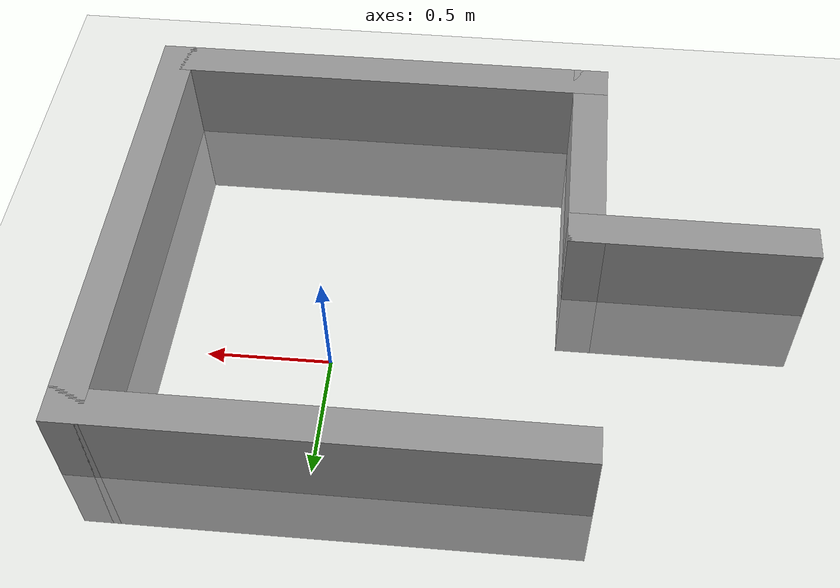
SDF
<?xml version="1.0" ?>
<sdf version='1.8'>
  <world name='empty'>
    <physics name="1ms" type="ignored">
      <max_step_size>0.001</max_step_size>
      <real_time_factor>1.0</real_time_factor>
    </physics>

    <plugin
      filename="gz-sim-physics-system"
      name="gz::sim::systems::Physics">
    </plugin>
    <plugin
      filename="gz-sim-user-commands-system"
      name="gz::sim::systems::UserCommands">
    </plugin>
    <plugin
      filename="gz-sim-scene-broadcaster-system"
      name="gz::sim::systems::SceneBroadcaster">
    </plugin>
    <plugin
      filename="gz-sim-contact-system"
      name="gz::sim::systems::Contact">
    </plugin>
    <plugin
      filename="gz-sim-sensors-system"
      name="gz::sim::systems::Sensors">
      <render_engine>ogre2</render_engine>
    </plugin>
    <plugin
      filename="gz-sim-imu-system"
      name="gz::sim::systems::Imu">
    </plugin>

    <gui fullscreen="0">
      <!-- 3D scene -->
      <plugin filename="MinimalScene" name="3D View">
        <gz-gui>
          <title>3D View</title>
          <property type="bool" key="showTitleBar">false</property>
          <property type="string" key="state">docked</property>
        </gz-gui>

        <engine>ogre2</engine>
        <scene>scene</scene>
        <ambient_light>0.4 0.4 0.4</ambient_light>
        <background_color>0.8 0.8 0.8</background_color>
        <camera_pose>-6 0 6 0 0.5 0</camera_pose>
        <camera_clip>
          <near>0.25</near>
          <far>25000</far>
        </camera_clip>
      </plugin>
      <!-- Plugins that add functionality to the scene -->
      <plugin filename="EntityContextMenuPlugin" name="Entity context menu">
        <gz-gui>
          <property key="state" type="string">floating</property>
          <property key="width" type="double">5</property>
          <property key="height" type="double">5</property>
          <property key="showTitleBar" type="bool">false</property>
        </gz-gui>
      </plugin>
      <plugin filename="GzSceneManager" name="Scene Manager">
        <gz-gui>
          <property key="resizable" type="bool">false</property>
          <property key="width" type="double">5</property>
          <property key="height" type="double">5</property>
          <property key="state" type="string">floating</property>
          <property key="showTitleBar" type="bool">false</property>
        </gz-gui>
      </plugin>
      <plugin filename="InteractiveViewControl" name="Interactive view control">
        <gz-gui>
          <property key="resizable" type="bool">false</property>
          <property key="width" type="double">5</property>
          <property key="height" type="double">5</property>
          <property key="state" type="string">floating</property>
          <property key="showTitleBar" type="bool">false</property>
        </gz-gui>
      </plugin>
      <plugin filename="CameraTracking" name="Camera Tracking">
        <gz-gui>
          <property key="resizable" type="bool">false</property>
          <property key="width" type="double">5</property>
          <property key="height" type="double">5</property>
          <property key="state" type="string">floating</property>
          <property key="showTitleBar" type="bool">false</property>
        </gz-gui>
      </plugin>
      <plugin filename="MarkerManager" name="Marker manager">
        <gz-gui>
          <property key="resizable" type="bool">false</property>
          <property key="width" type="double">5</property>
          <property key="height" type="double">5</property>
          <property key="state" type="string">floating</property>
          <property key="showTitleBar" type="bool">false</property>
        </gz-gui>
      </plugin>
      <plugin filename="SelectEntities" name="Select Entities">
        <gz-gui>
          <anchors target="Select entities">
            <line own="right" target="right"/>
            <line own="top" target="top"/>
          </anchors>
          <property key="resizable" type="bool">false</property>
          <property key="width" type="double">5</property>
          <property key="height" type="double">5</property>
          <property key="state" type="string">floating</property>
          <property key="showTitleBar" type="bool">false</property>
        </gz-gui>
      </plugin>
      <plugin filename="VisualizationCapabilities" name="Visualization Capabilities">
        <gz-gui>
          <property key="resizable" type="bool">false</property>
          <property key="width" type="double">5</property>
          <property key="height" type="double">5</property>
          <property key="state" type="string">floating</property>
          <property key="showTitleBar" type="bool">false</property>
        </gz-gui>
      </plugin>
      <plugin filename="Spawn" name="Spawn Entities">
        <gz-gui>
          <anchors target="Select entities">
            <line own="right" target="right"/>
            <line own="top" target="top"/>
          </anchors>
          <property key="resizable" type="bool">false</property>
          <property key="width" type="double">5</property>
          <property key="height" type="double">5</property>
          <property key="state" type="string">floating</property>
          <property key="showTitleBar" type="bool">false</property>
        </gz-gui>
      </plugin>

      <!-- World control -->
      <plugin filename="WorldControl" name="World control">
        <gz-gui>
          <title>World control</title>
          <property type="bool" key="showTitleBar">false</property>
          <property type="bool" key="resizable">false</property>
          <property type="double" key="height">72</property>
          <property type="double" key="width">121</property>
          <property type="double" key="z">1</property>

          <property type="string" key="state">floating</property>
          <anchors target="3D View">
            <line own="left" target="left"/>
            <line own="bottom" target="bottom"/>
          </anchors>
        </gz-gui>

        <play_pause>true</play_pause>
        <step>true</step>
        <start_paused>true</start_paused>
        <use_event>true</use_event>

      </plugin>

      <!-- World statistics -->
      <plugin filename="WorldStats" name="World stats">
        <gz-gui>
          <title>World stats</title>
          <property type="bool" key="showTitleBar">false</property>
          <property type="bool" key="resizable">false</property>
          <property type="double" key="height">110</property>
          <property type="double" key="width">290</property>
          <property type="double" key="z">1</property>

          <property type="string" key="state">floating</property>
          <anchors target="3D View">
            <line own="right" target="right"/>
            <line own="bottom" target="bottom"/>
          </anchors>
        </gz-gui>

        <sim_time>true</sim_time>
        <real_time>true</real_time>
        <real_time_factor>true</real_time_factor>
        <iterations>true</iterations>
      </plugin>

      <!-- Insert simple shapes -->
      <plugin filename="Shapes" name="Shapes">
        <gz-gui>
          <property key="resizable" type="bool">false</property>
          <property key="x" type="double">0</property>
          <property key="y" type="double">0</property>
          <property key="width" type="double">250</property>
          <property key="height" type="double">50</property>
          <property key="state" type="string">floating</property>
          <property key="showTitleBar" type="bool">false</property>
          <property key="cardBackground" type="string">#666666</property>
        </gz-gui>
      </plugin>

      <!-- Insert lights -->
      <plugin filename="Lights" name="Lights">
        <gz-gui>
          <property key="resizable" type="bool">false</property>
          <property key="x" type="double">250</property>
          <property key="y" type="double">0</property>
          <property key="width" type="double">150</property>
          <property key="height" type="double">50</property>
          <property key="state" type="string">floating</property>
          <property key="showTitleBar" type="bool">false</property>
          <property key="cardBackground" type="string">#666666</property>
        </gz-gui>
      </plugin>

      <!-- Translate / rotate -->
      <plugin filename="TransformControl" name="Transform control">
        <gz-gui>
          <property key="resizable" type="bool">false</property>
          <property key="x" type="double">0</property>
          <property key="y" type="double">50</property>
          <property key="width" type="double">250</property>
          <property key="height" type="double">50</property>
          <property key="state" type="string">floating</property>
          <property key="showTitleBar" type="bool">false</property>
          <property key="cardBackground" type="string">#777777</property>
        </gz-gui>
      </plugin>

      <!-- Screenshot -->
      <plugin filename="Screenshot" name="Screenshot">
        <gz-gui>
          <property key="resizable" type="bool">false</property>
          <property key="x" type="double">250</property>
          <property key="y" type="double">50</property>
          <property key="width" type="double">50</property>
          <property key="height" type="double">50</property>
          <property key="state" type="string">floating</property>
          <property key="showTitleBar" type="bool">false</property>
          <property key="cardBackground" type="string">#777777</property>
        </gz-gui>
      </plugin>

      <!-- Video recorder -->
      <plugin filename="VideoRecorder" name="VideoRecorder">
        <gz-gui>
          <property key="resizable" type="bool">false</property>
          <property key="x" type="double">300</property>
          <property key="y" type="double">50</property>
          <property key="width" type="double">50</property>
          <property key="height" type="double">50</property>
          <property key="state" type="string">floating</property>
          <property key="showTitleBar" type="bool">false</property>
          <property key="cardBackground" type="string">#777777</property>
        </gz-gui>

        <record_video>
          <use_sim_time>true</use_sim_time>
          <lockstep>false</lockstep>
          <bitrate>4000000</bitrate>
        </record_video>
      </plugin>

      <!-- Inspector -->
      <plugin filename="ComponentInspector" name="Component inspector">
        <gz-gui>
          <property type="string" key="state">docked_collapsed</property>
        </gz-gui>
      </plugin>

      <!-- Entity tree -->
      <plugin filename="EntityTree" name="Entity tree">
        <gz-gui>
          <property type="string" key="state">docked_collapsed</property>
        </gz-gui>
      </plugin>

      <!-- View angle -->
      <plugin filename="ViewAngle" name="View angle">
        <gz-gui>
          <property type="string" key="state">docked_collapsed</property>
        </gz-gui>
      </plugin>

    </gui>

    <light type="directional" name="sun">
        <cast_shadows>true</cast_shadows>
        <pose>0 0 10 0 0 0</pose>
        <diffuse>0.8 0.8 0.8 1</diffuse>
        <specular>0.2 0.2 0.2 1</specular>
        <attenuation>
            <range>1000</range>
            <constant>0.9</constant>
            <linear>0.01</linear>
            <quadratic>0.001</quadratic>
        </attenuation>
        <direction>-0.5 0.1 -0.9</direction>
    </light>

    <model name="ground_plane">
        <static>true</static>
        <link name="link">
            <collision name="collision">
            <geometry>
                <plane>
                <normal>0 0 1</normal>
                </plane>
            </geometry>
            </collision>
            <visual name="visual">
            <geometry>
                <plane>
                <normal>0 0 1</normal>
                <size>100 100</size>
                </plane>
            </geometry>
            <material>
                <ambient>0.8 0.8 0.8 1</ambient>
                <diffuse>0.8 0.8 0.8 1</diffuse>
                <specular>0.8 0.8 0.8 1</specular>
            </material>
            </visual>
        </link>
    </model>

    <!--room-->
  <model name='room4'>
    <pose>-0.5 2 0 0 0 0</pose>
    <link name='Wall_0'>
      <collision name='Wall_0_Collision'>
        <geometry>
          <box>
            <size>2 0.15 0.75</size>
          </box>
        </geometry>
        <pose>0 0 0 0 -0 0</pose>
      </collision>
      <visual name='Wall_0_Visual'>
        <pose>0 0 0 0 -0 0</pose>
        <geometry>
          <box>
            <size>2 0.15 0.75</size>
          </box>
        </geometry>
        <material>
          <script>
            <uri>file://media/materials/scripts/gazebo.material</uri>
            <name>Gazebo/Grey</name>
          </script>
          <ambient>1 1 1 1</ambient>
        </material>
        <meta>
          <layer>0</layer>
        </meta>
      </visual>
      <pose>0.4375 -1.4825 0 0 -0 0</pose>
    </link>
    <link name='Wall_1'>
      <collision name='Wall_1_Collision'>
        <geometry>
          <box>
            <size>2 0.15 0.75</size>
          </box>
        </geometry>
        <pose>0 0 0 0 -0 0</pose>
      </collision>
      <visual name='Wall_1_Visual'>
        <pose>0 0 0 0 -0 0</pose>
        <geometry>
          <box>
            <size>2 0.15 0.75</size>
          </box>
        </geometry>
        <material>
          <script>
            <uri>file://media/materials/scripts/gazebo.material</uri>
            <name>Gazebo/Grey</name>
          </script>
          <ambient>1 1 1 1</ambient>
        </material>
        <meta>
          <layer>0</layer>
        </meta>
      </visual>
      <pose>1.3625 -2.4075 0 0 -0 -1.5708</pose>
    </link>
    <link name='Wall_2'>
      <collision name='Wall_2_Collision'>
        <geometry>
          <box>
            <size>2 0.15 0.75</size>
          </box>
        </geometry>
        <pose>0 0 0 0 -0 0</pose>
      </collision>
      <visual name='Wall_2_Visual'>
        <pose>0 0 0 0 -0 0</pose>
        <geometry>
          <box>
            <size>2 0.15 0.75</size>
          </box>
        </geometry>
        <material>
          <script>
            <uri>file://media/materials/scripts/gazebo.material</uri>
            <name>Gazebo/Grey</name>
          </script>
          <ambient>1 1 1 1</ambient>
        </material>
        <meta>
          <layer>0</layer>
        </meta>
      </visual>
      <pose>0.4375 -3.3325 0 0 -0 3.14159</pose>
    </link>
    <link name='Wall_3'>
      <collision name='Wall_3_Collision'>
        <geometry>
          <box>
            <size>1 0.15 0.75</size>
          </box>
        </geometry>
        <pose>0 0 0 0 -0 0</pose>
      </collision>
      <visual name='Wall_3_Visual'>
        <pose>0 0 0 0 -0 0</pose>
        <geometry>
          <box>
            <size>1 0.15 0.75</size>
          </box>
        </geometry>
        <material>
          <script>
            <uri>file://media/materials/scripts/gazebo.material</uri>
            <name>Gazebo/Grey</name>
          </script>
          <ambient>1 1 1 1</ambient>
        </material>
        <meta>
          <layer>0</layer>
        </meta>
      </visual>
      <pose>-0.4875 -2.9075 0 0 -0 1.5708</pose>
    </link>
    <link name='Wall_4'>
      <collision name='Wall_4_Collision'>
        <geometry>
          <box>
            <size>1 0.15 0.75</size>
          </box>
        </geometry>
        <pose>0 0 0 0 -0 0</pose>
      </collision>
      <visual name='Wall_4_Visual'>
        <pose>0 0 0 0 -0 0</pose>
        <geometry>
          <box>
            <size>1 0.15 0.75</size>
          </box>
        </geometry>
        <material>
          <script>
            <uri>file://media/materials/scripts/gazebo.material</uri>
            <name>Gazebo/Grey</name>
          </script>
          <ambient>1 1 1 1</ambient>
        </material>
        <meta>
          <layer>0</layer>
        </meta>
      </visual>
      <pose>-0.9125 -2.4825 0 0 -0 3.14159</pose>
    </link>
    <static>1</static>
  </model>
  </world>
</sdf>
